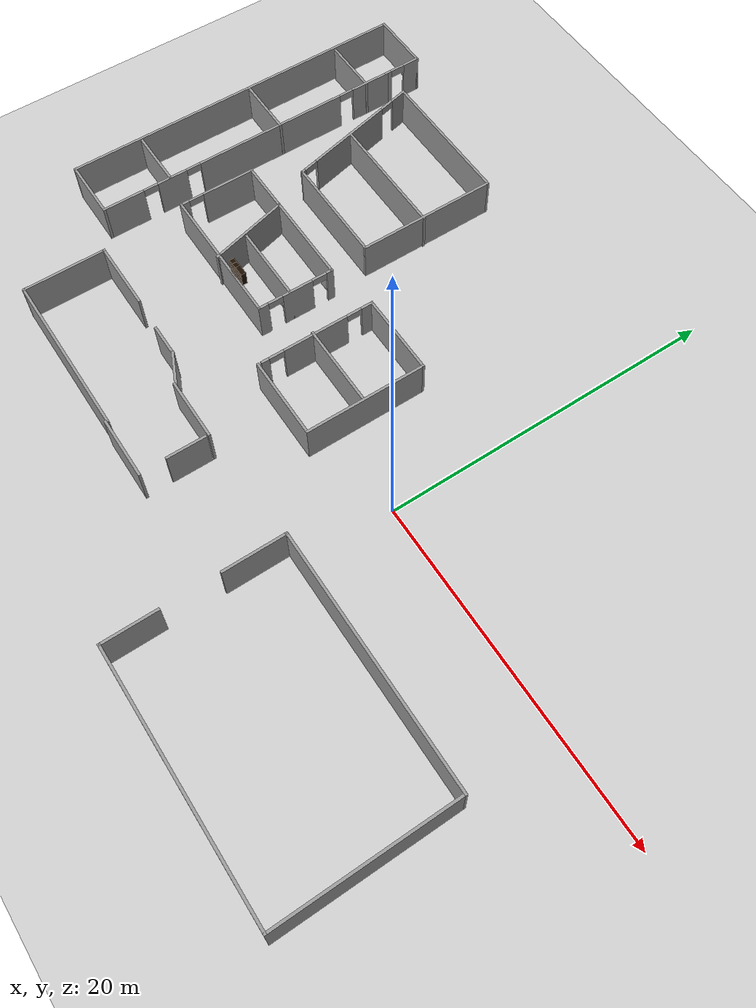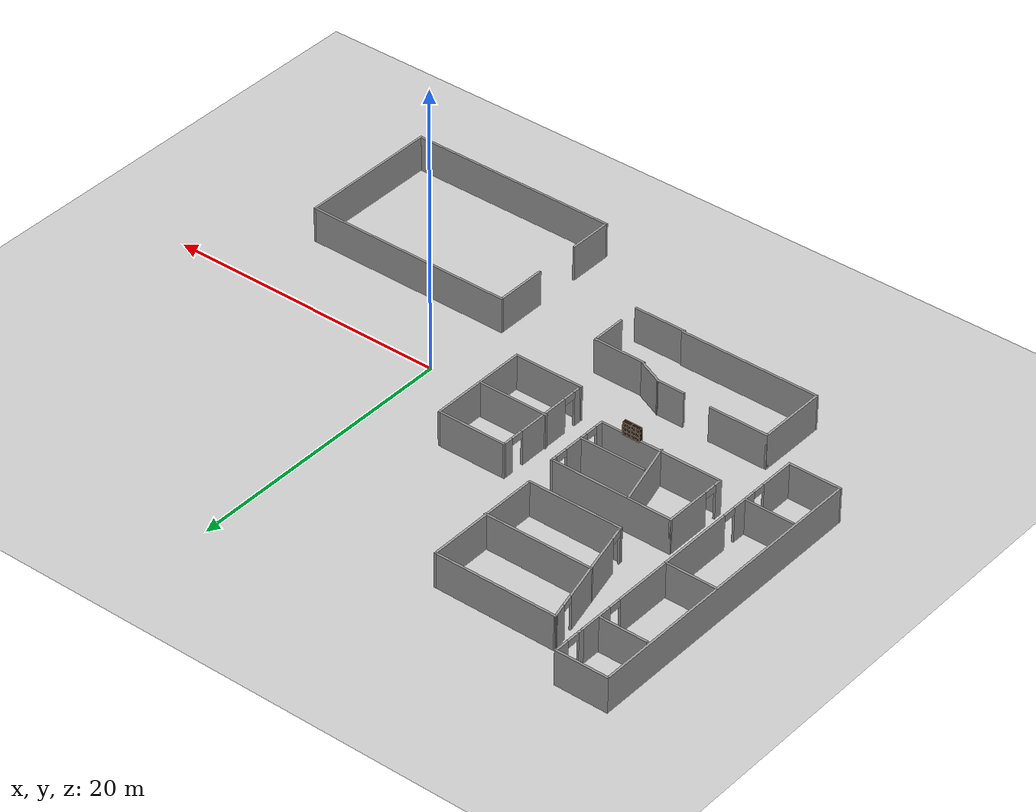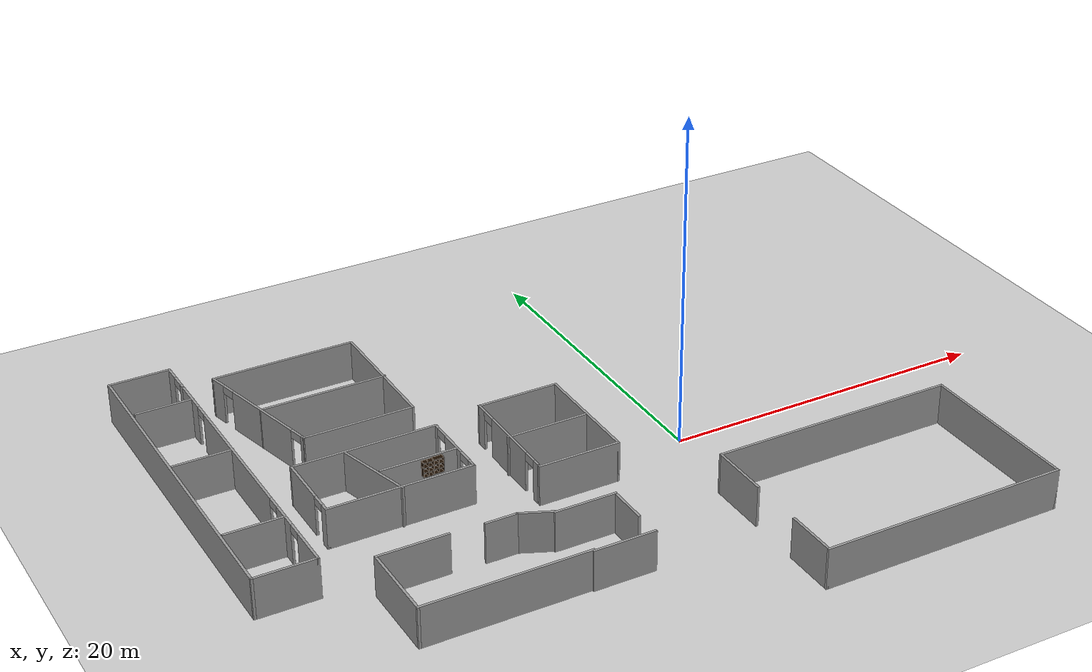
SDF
<sdf version="1.5">
 <world name="default">
  <model name="ground_plane">
   <static>1</static>
   <link name="link">
    <collision name="collision">
     <geometry><plane><normal>0 0 1</normal><size>100 100</size></plane></geometry>
     <surface>
      <contact><collide_bitmask>65535</collide_bitmask></contact>
      <friction><ode><mu>100</mu><mu2>50</mu2></ode></friction>
     </surface>
    </collision>
    <visual name="visual">
     <cast_shadows>0</cast_shadows>
     <geometry><plane><normal>0 0 1</normal><size>100 100</size></plane></geometry>
     <material>
      <script><uri>file://media/materials/scripts/gazebo.material</uri><name>Gazebo/Grey</name></script>
     </material>
    </visual>
   </link>
  </model>
  <model name="first_floor_add">
   <pose>-6.66595 1.00331 0 0 -0 0</pose>
   <link name="Wall_13">
    <collision name="Wall_13_Collision">
     <geometry><box><size>2 0.15 2.5</size></box></geometry>
     <pose>0 0 1.25 0 -0 0</pose>
    </collision>
    <visual name="Wall_13_Visual">
     <pose>0 0 1.25 0 -0 0</pose>
     <geometry><box><size>2 0.15 2.5</size></box></geometry>
     <material>
      <script><uri>file://media/materials/scripts/gazebo.material</uri><name>Gazebo/Grey</name></script>
      <ambient>1 1 1 1</ambient>
     </material>
     <meta><layer>0</layer></meta>
    </visual>
    <pose>-7.36405 -6.11422 0 0 -0 0</pose>
   </link>
   <link name="Wall_15">
    <collision name="Wall_15_Collision">
     <geometry><box><size>2.08472 0.15 2.5</size></box></geometry>
     <pose>0 0 1.25 0 -0 0</pose>
    </collision>
    <visual name="Wall_15_Visual">
     <pose>0 0 1.25 0 -0 0</pose>
     <geometry><box><size>2.08472 0.15 2.5</size></box></geometry>
     <material>
      <script><uri>file://media/materials/scripts/gazebo.material</uri><name>Gazebo/Grey</name></script>
      <ambient>1 1 1 1</ambient>
     </material>
     <meta><layer>0</layer></meta>
    </visual>
    <pose>-5.55503 -6.50778 0 0 -0 -0.418849</pose>
   </link>
   <link name="Wall_16">
    <collision name="Wall_16_Collision">
     <geometry><box><size>3.75 0.15 2.5</size></box></geometry>
     <pose>0 0 1.25 0 -0 0</pose>
    </collision>
    <visual name="Wall_16_Visual">
     <pose>0 0 1.25 0 -0 0</pose>
     <geometry><box><size>3.75 0.15 2.5</size></box></geometry>
     <material>
      <script><uri>file://media/materials/scripts/gazebo.material</uri><name>Gazebo/Grey</name></script>
      <ambient>1 1 1 1</ambient>
     </material>
     <meta><layer>0</layer></meta>
    </visual>
    <pose>-2.87101 -6.9721 0 0 -0 0</pose>
   </link>
   <link name="Wall_20">
    <collision name="Wall_20_Collision">
     <geometry><box><size>3.75 0.15 2.5</size></box></geometry>
     <pose>0 1.2 1.25 0 -0 0</pose>
    </collision>
    <visual name="Wall_20_Visual">
     <pose>0 1.2 1.25 0 -0 0</pose>
     <geometry><box><size>3.75 0.15 2.5</size></box></geometry>
     <material>
      <script><uri>file://media/materials/scripts/gazebo.material</uri><name>Gazebo/Grey</name></script>
      <ambient>1 1 1 1</ambient>
     </material>
     <meta><layer>0</layer></meta>
    </visual>
    <pose>-2.8204 -9.76422 0 0 -0 3.14159</pose>
   </link>
   <link name="Wall_22">
    <collision name="Wall_22_Collision">
     <geometry><box><size>10 0.15 2.5</size></box></geometry>
     <pose>0 0 1.25 0 -0 0</pose>
    </collision>
    <visual name="Wall_22_Visual">
     <pose>0 0 1.25 0 -0 0</pose>
     <geometry><box><size>10 0.15 2.5</size></box></geometry>
     <material>
      <script><uri>file://media/materials/scripts/gazebo.material</uri><name>Gazebo/Grey</name></script>
      <ambient>1 1 1 1</ambient>
     </material>
     <meta><layer>0</layer></meta>
    </visual>
    <pose>-9.5454 -10.8642 0 0 -0 3.14159</pose>
   </link>
   <link name="Wall_23">
    <collision name="Wall_23_Collision">
     <geometry><box><size>5 0.15 2.5</size></box></geometry>
     <pose>0 0 1.25 0 -0 0</pose>
    </collision>
    <visual name="Wall_23_Visual">
     <pose>0 0 1.25 0 -0 0</pose>
     <geometry><box><size>5 0.15 2.5</size></box></geometry>
     <material>
      <script><uri>file://media/materials/scripts/gazebo.material</uri><name>Gazebo/Grey</name></script>
      <ambient>1 1 1 1</ambient>
     </material>
     <meta><layer>0</layer></meta>
    </visual>
    <pose>-14.4704 -8.43922 0 0 -0 1.5708</pose>
   </link>
   <link name="Wall_24">
    <collision name="Wall_24_Collision">
     <geometry><box><size>4.25 0.15 2.5</size></box></geometry>
     <pose>0 0 1.25 0 -0 0</pose>
    </collision>
    <visual name="Wall_24_Visual">
     <pose>0 0 1.25 0 -0 0</pose>
     <geometry><box><size>4.25 0.15 2.5</size></box></geometry>
     <material>
      <script><uri>file://media/materials/scripts/gazebo.material</uri><name>Gazebo/Grey</name></script>
      <ambient>1 1 1 1</ambient>
     </material>
     <meta><layer>0</layer></meta>
    </visual>
    <pose>-12.4204 -6.01422 0 0 -0 0</pose>
   </link>
   <link name="Wall_27">
    <collision name="Wall_27_Collision">
     <geometry><box><size>15 0.15 2.5</size></box></geometry>
     <pose>0 0 1.25 0 -0 0</pose>
    </collision>
    <visual name="Wall_27_Visual">
     <pose>0 0 1.25 0 -0 0</pose>
     <geometry><box><size>15 0.15 2.5</size></box></geometry>
     <material>
      <script><uri>file://media/materials/scripts/gazebo.material</uri><name>Gazebo/Grey</name></script>
      <ambient>1 1 1 1</ambient>
     </material>
     <meta><layer>0</layer></meta>
    </visual>
    <pose>13.2135 -16.6492 0 0 -0 0</pose>
   </link>
   <link name="Wall_28">
    <collision name="Wall_28_Collision">
     <geometry><box><size>10.25 0.15 2.5</size></box></geometry>
     <pose>0 0 1.25 0 -0 0</pose>
    </collision>
    <visual name="Wall_28_Visual">
     <pose>0 0 1.25 0 -0 0</pose>
     <geometry><box><size>10.25 0.15 2.5</size></box></geometry>
     <material>
      <script><uri>file://media/materials/scripts/gazebo.material</uri><name>Gazebo/Grey</name></script>
      <ambient>1 1 1 1</ambient>
     </material>
     <meta><layer>0</layer></meta>
    </visual>
    <pose>20.6385 -11.5992 0 0 -0 1.5708</pose>
   </link>
   <link name="Wall_29">
    <collision name="Wall_29_Collision">
     <geometry><box><size>15 0.15 2.5</size></box></geometry>
     <pose>0 0 1.25 0 -0 0</pose>
    </collision>
    <visual name="Wall_29_Visual">
     <pose>0 0 1.25 0 -0 0</pose>
     <geometry><box><size>15 0.15 2.5</size></box></geometry>
     <material>
      <script><uri>file://media/materials/scripts/gazebo.material</uri><name>Gazebo/Grey</name></script>
      <ambient>1 1 1 1</ambient>
     </material>
     <meta><layer>0</layer></meta>
    </visual>
    <pose>13.2135 -6.5492 0 0 -0 3.14159</pose>
   </link>
   <link name="Wall_31">
    <collision name="Wall_31_Collision">
     <geometry><box><size>3.25 0.15 2.5</size></box></geometry>
     <pose>0 0 1.25 0 -0 0</pose>
    </collision>
    <visual name="Wall_31_Visual">
     <pose>0 0 1.25 0 -0 0</pose>
     <geometry><box><size>3.25 0.15 2.5</size></box></geometry>
     <material>
      <script><uri>file://media/materials/scripts/gazebo.material</uri><name>Gazebo/Grey</name></script>
      <ambient>1 1 1 1</ambient>
     </material>
     <meta><layer>0</layer></meta>
    </visual>
    <pose>5.78854 -15.0992 0 0 -0 1.5708</pose>
   </link>
   <link name="Wall_33">
    <collision name="Wall_33_Collision">
     <geometry><box><size>3.75 0.15 2.5</size></box></geometry>
     <pose>0 0 1.25 0 -0 0</pose>
    </collision>
    <visual name="Wall_33_Visual">
     <pose>0 0 1.25 0 -0 0</pose>
     <geometry><box><size>3.75 0.15 2.5</size></box></geometry>
     <material>
      <script><uri>file://media/materials/scripts/gazebo.material</uri><name>Gazebo/Grey</name></script>
      <ambient>1 1 1 1</ambient>
     </material>
     <meta><layer>0</layer></meta>
    </visual>
    <pose>5.78854 -8.34919 0 0 -0 -1.5708</pose>
   </link>
   <link name="Wall_36">
    <collision name="Wall_36_Collision">
     <geometry><box><size>2.35 0.15 2.5</size></box></geometry>
     <pose>1 0 1.25 0 -0 0</pose>
    </collision>
    <visual name="Wall_36_Visual">
     <pose>1 0 1.25 0 -0 0</pose>
     <geometry><box><size>2.35 0.15 2.5</size></box></geometry>
     <material>
      <script><uri>file://media/materials/scripts/gazebo.material</uri><name>Gazebo/Grey</name></script>
      <ambient>1 1 1 1</ambient>
     </material>
     <meta><layer>0</layer></meta>
    </visual>
    <pose>-1.07101 -7.2721 0 0 -0 -1.5708</pose>
   </link>
   <link name="Wall_41">
    <collision name="Wall_41_Collision">
     <geometry><box><size>6.75 0.15 2.5</size></box></geometry>
     <pose>0 0 1.25 0 -0 0</pose>
    </collision>
    <visual name="Wall_41_Visual">
     <pose>0 0 1.25 0 -0 0</pose>
     <geometry><box><size>6.75 0.15 2.5</size></box></geometry>
     <material>
      <script><uri>file://media/materials/scripts/gazebo.material</uri><name>Gazebo/Grey</name></script>
      <ambient>1 1 1 1</ambient>
     </material>
     <meta><layer>0</layer></meta>
    </visual>
    <pose>-9.89713 6.06852 0 0 -0 0</pose>
   </link>
   <link name="Wall_42">
    <collision name="Wall_42_Collision">
     <geometry><box><size>8.5 0.15 2.5</size></box></geometry>
     <pose>0 0 1.25 0 -0 0</pose>
    </collision>
    <visual name="Wall_42_Visual">
     <pose>0 0 1.25 0 -0 0</pose>
     <geometry><box><size>8.5 0.15 2.5</size></box></geometry>
     <material>
      <script><uri>file://media/materials/scripts/gazebo.material</uri><name>Gazebo/Grey</name></script>
      <ambient>1 1 1 1</ambient>
     </material>
     <meta><layer>0</layer></meta>
    </visual>
    <pose>-6.59713 10.2435 0 0 -0 1.5708</pose>
   </link>
   <link name="Wall_43">
    <collision name="Wall_43_Collision">
     <geometry><box><size>8.75 0.15 2.5</size></box></geometry>
     <pose>0 0 1.25 0 -0 0</pose>
    </collision>
    <visual name="Wall_43_Visual">
     <pose>0 0 1.25 0 -0 0</pose>
     <geometry><box><size>8.75 0.15 2.5</size></box></geometry>
     <material>
      <script><uri>file://media/materials/scripts/gazebo.material</uri><name>Gazebo/Grey</name></script>
      <ambient>1 1 1 1</ambient>
     </material>
     <meta><layer>0</layer></meta>
    </visual>
    <pose>-10.8971 14.4185 0 0 -0 3.14159</pose>
   </link>
   <link name="Wall_44">
    <pose>-14.1971 10.2435 0 0 -0 -1.3357</pose>
    <visual name="Wall_44_Visual_0">
     <pose>-3.81233 0 1.25 0 -0 0</pose>
     <geometry><box><size>1.11152 0.15 2.5</size></box></geometry>
     <material>
      <script><uri>file://media/materials/scripts/gazebo.material</uri><name>Gazebo/Grey</name></script>
      <ambient>1 1 1 1</ambient>
     </material>
     <meta><layer>0</layer></meta>
    </visual>
    <collision name="Wall_44_Collision_0">
     <geometry><box><size>1.11152 0.15 2.5</size></box></geometry>
     <pose>-3.81233 0 1.25 0 -0 0</pose>
    </collision>
    <visual name="Wall_44_Visual_1">
     <pose>0.408277 0 1.25 0 -0 0</pose>
     <geometry><box><size>5.5297 0.15 2.5</size></box></geometry>
     <material>
      <script><uri>file://media/materials/scripts/gazebo.material</uri><name>Gazebo/Grey</name></script>
      <ambient>1 1 1 1</ambient>
     </material>
     <meta><layer>0</layer></meta>
    </visual>
    <collision name="Wall_44_Collision_1">
     <geometry><box><size>5.5297 0.15 2.5</size></box></geometry>
     <pose>0.408277 0 1.25 0 -0 0</pose>
    </collision>
    <visual name="Wall_44_Visual_2">
     <pose>4.22061 0 1.25 0 -0 0</pose>
     <geometry><box><size>0.294964 0.15 2.5</size></box></geometry>
     <material>
      <script><uri>file://media/materials/scripts/gazebo.material</uri><name>Gazebo/Grey</name></script>
      <ambient>1 1 1 1</ambient>
     </material>
     <meta><layer>0</layer></meta>
    </visual>
    <collision name="Wall_44_Collision_2">
     <geometry><box><size>0.294964 0.15 2.5</size></box></geometry>
     <pose>4.22061 0 1.25 0 -0 0</pose>
    </collision>
    <visual name="Wall_44_Visual_3">
     <pose>-2.80657 0 2.25 0 -0 0</pose>
     <geometry><box><size>0.9 0.15 0.5</size></box></geometry>
     <material>
      <script><uri>file://media/materials/scripts/gazebo.material</uri><name>Gazebo/Grey</name></script>
      <ambient>1 1 1 1</ambient>
     </material>
     <meta><layer>0</layer></meta>
    </visual>
    <collision name="Wall_44_Collision_3">
     <geometry><box><size>0.9 0.15 0.5</size></box></geometry>
     <pose>-2.80657 0 2.25 0 -0 0</pose>
    </collision>
    <visual name="Wall_44_Visual_4">
     <pose>3.62313 0 2.25 0 -0 0</pose>
     <geometry><box><size>0.9 0.15 0.5</size></box></geometry>
     <material>
      <script><uri>file://media/materials/scripts/gazebo.material</uri><name>Gazebo/Grey</name></script>
      <ambient>1 1 1 1</ambient>
     </material>
     <meta><layer>0</layer></meta>
    </visual>
    <collision name="Wall_44_Collision_4">
     <geometry><box><size>0.9 0.15 0.5</size></box></geometry>
     <pose>3.62313 0 2.25 0 -0 0</pose>
    </collision>
   </link>
   <link name="Wall_46">
    <collision name="Wall_46_Collision">
     <geometry><box><size>7.75 0.15 2.5</size></box></geometry>
     <pose>0 0 1.25 0 -0 0</pose>
    </collision>
    <visual name="Wall_46_Visual">
     <pose>0 0 1.25 0 -0 0</pose>
     <geometry><box><size>7.75 0.15 2.5</size></box></geometry>
     <material>
      <script><uri>file://media/materials/scripts/gazebo.material</uri><name>Gazebo/Grey</name></script>
      <ambient>1 1 1 1</ambient>
     </material>
     <meta><layer>0</layer></meta>
    </visual>
    <pose>-10.3303 9.94403 0 0 -0 0</pose>
   </link>
   <link name="Wall_49">
    <collision name="Wall_49_Collision">
     <geometry><box><size>8.75 0.15 2.5</size></box></geometry>
     <pose>0 0 1.25 0 -0 0</pose>
    </collision>
    <visual name="Wall_49_Visual">
     <pose>0 0 1.25 0 -0 0</pose>
     <geometry><box><size>8.75 0.15 2.5</size></box></geometry>
     <material>
      <script><uri>file://media/materials/scripts/gazebo.material</uri><name>Gazebo/Grey</name></script>
      <ambient>1 1 1 1</ambient>
     </material>
     <meta><layer>0</layer></meta>
    </visual>
    <pose>-10.6338 3.69442 0 0 -0 3.14159</pose>
   </link>
   <link name="Wall_50">
    <pose>-14.9338 1.39443 0 0 -0 -1.5708</pose>
    <visual name="Wall_50_Visual_0">
     <pose>-0.737121 0 1.25 0 -0 0</pose>
     <geometry><box><size>3.27576 0.15 2.5</size></box></geometry>
     <material>
      <script><uri>file://media/materials/scripts/gazebo.material</uri><name>Gazebo/Grey</name></script>
      <ambient>1 1 1 1</ambient>
     </material>
     <meta><layer>0</layer></meta>
    </visual>
    <collision name="Wall_50_Collision_0">
     <geometry><box><size>3.27576 0.15 2.5</size></box></geometry>
     <pose>-0.737121 0 1.25 0 -0 0</pose>
    </collision>
    <visual name="Wall_50_Visual_1">
     <pose>2.08788 0 1.25 0 -0 0</pose>
     <geometry><box><size>0.574241 0.15 2.5</size></box></geometry>
     <material>
      <script><uri>file://media/materials/scripts/gazebo.material</uri><name>Gazebo/Grey</name></script>
      <ambient>1 1 1 1</ambient>
     </material>
     <meta><layer>0</layer></meta>
    </visual>
    <collision name="Wall_50_Collision_1">
     <geometry><box><size>0.574241 0.15 2.5</size></box></geometry>
     <pose>2.08788 0 1.25 0 -0 0</pose>
    </collision>
    <visual name="Wall_50_Visual_2">
     <pose>1.35076 0 2.25 0 -0 0</pose>
     <geometry><box><size>0.9 0.15 0.5</size></box></geometry>
     <material>
      <script><uri>file://media/materials/scripts/gazebo.material</uri><name>Gazebo/Grey</name></script>
      <ambient>1 1 1 1</ambient>
     </material>
     <meta><layer>0</layer></meta>
    </visual>
    <collision name="Wall_50_Collision_2">
     <geometry><box><size>0.9 0.15 0.5</size></box></geometry>
     <pose>1.35076 0 2.25 0 -0 0</pose>
    </collision>
   </link>
   <link name="Wall_51">
    <collision name="Wall_51_Collision">
     <geometry><box><size>8.75 0.15 2.5</size></box></geometry>
     <pose>0 0 1.25 0 -0 0</pose>
    </collision>
    <visual name="Wall_51_Visual">
     <pose>0 0 1.25 0 -0 0</pose>
     <geometry><box><size>8.75 0.15 2.5</size></box></geometry>
     <material>
      <script><uri>file://media/materials/scripts/gazebo.material</uri><name>Gazebo/Grey</name></script>
      <ambient>1 1 1 1</ambient>
     </material>
     <meta><layer>0</layer></meta>
    </visual>
    <pose>-10.6338 -0.905575 0 0 -0 0</pose>
   </link>
   <link name="Wall_52">
    <pose>-6.33377 1.39443 0 0 -0 1.5708</pose>
    <visual name="Wall_52_Visual_0">
     <pose>-2.05694 0 1.25 0 -0 0</pose>
     <geometry><box><size>0.636118 0.15 2.5</size></box></geometry>
     <material>
      <script><uri>file://media/materials/scripts/gazebo.material</uri><name>Gazebo/Grey</name></script>
      <ambient>1 1 1 1</ambient>
     </material>
     <meta><layer>0</layer></meta>
    </visual>
    <collision name="Wall_52_Collision_0">
     <geometry><box><size>0.636118 0.15 2.5</size></box></geometry>
     <pose>-2.05694 0 1.25 0 -0 0</pose>
    </collision>
    <visual name="Wall_52_Visual_1">
     <pose>0.103357 0 1.25 0 -0 0</pose>
     <geometry><box><size>1.88448 0.15 2.5</size></box></geometry>
     <material>
      <script><uri>file://media/materials/scripts/gazebo.material</uri><name>Gazebo/Grey</name></script>
      <ambient>1 1 1 1</ambient>
     </material>
     <meta><layer>0</layer></meta>
    </visual>
    <collision name="Wall_52_Collision_1">
     <geometry><box><size>1.88448 0.15 2.5</size></box></geometry>
     <pose>0.103357 0 1.25 0 -0 0</pose>
    </collision>
    <visual name="Wall_52_Visual_2">
     <pose>2.1603 0 1.25 0 -0 0</pose>
     <geometry><box><size>0.429405 0.15 2.5</size></box></geometry>
     <material>
      <script><uri>file://media/materials/scripts/gazebo.material</uri><name>Gazebo/Grey</name></script>
      <ambient>1 1 1 1</ambient>
     </material>
     <meta><layer>0</layer></meta>
    </visual>
    <collision name="Wall_52_Collision_2">
     <geometry><box><size>0.429405 0.15 2.5</size></box></geometry>
     <pose>2.1603 0 1.25 0 -0 0</pose>
    </collision>
    <visual name="Wall_52_Visual_3">
     <pose>-1.28888 0 2.25 0 -0 0</pose>
     <geometry><box><size>0.9 0.15 0.5</size></box></geometry>
     <material>
      <script><uri>file://media/materials/scripts/gazebo.material</uri><name>Gazebo/Grey</name></script>
      <ambient>1 1 1 1</ambient>
     </material>
     <meta><layer>0</layer></meta>
    </visual>
    <collision name="Wall_52_Collision_3">
     <geometry><box><size>0.9 0.15 0.5</size></box></geometry>
     <pose>-1.28888 0 2.25 0 -0 0</pose>
    </collision>
    <visual name="Wall_52_Visual_4">
     <pose>1.4956 0 2.25 0 -0 0</pose>
     <geometry><box><size>0.9 0.15 0.5</size></box></geometry>
     <material>
      <script><uri>file://media/materials/scripts/gazebo.material</uri><name>Gazebo/Grey</name></script>
      <ambient>1 1 1 1</ambient>
     </material>
     <meta><layer>0</layer></meta>
    </visual>
    <collision name="Wall_52_Collision_4">
     <geometry><box><size>0.9 0.15 0.5</size></box></geometry>
     <pose>1.4956 0 2.25 0 -0 0</pose>
    </collision>
   </link>
   <link name="Wall_54">
    <collision name="Wall_54_Collision">
     <geometry><box><size>5 0.15 2.5</size></box></geometry>
     <pose>0 0 1.25 0 -0 0</pose>
    </collision>
    <visual name="Wall_54_Visual">
     <pose>0 0 1.25 0 -0 0</pose>
     <geometry><box><size>5 0.15 2.5</size></box></geometry>
     <material>
      <script><uri>file://media/materials/scripts/gazebo.material</uri><name>Gazebo/Grey</name></script>
      <ambient>1 1 1 1</ambient>
     </material>
     <meta><layer>0</layer></meta>
    </visual>
    <pose>-11.2309 1.33412 0 0 -0 1.8326</pose>
   </link>
   <link name="Wall_56">
    <collision name="Wall_56_Collision">
     <geometry><box><size>4.75 0.15 2.5</size></box></geometry>
     <pose>0 0 1.25 0 -0 0</pose>
    </collision>
    <visual name="Wall_56_Visual">
     <pose>0 0 1.25 0 -0 0</pose>
     <geometry><box><size>4.75 0.15 2.5</size></box></geometry>
     <material>
      <script><uri>file://media/materials/scripts/gazebo.material</uri><name>Gazebo/Grey</name></script>
      <ambient>1 1 1 1</ambient>
     </material>
     <meta><layer>0</layer></meta>
    </visual>
    <pose>-8.63377 1.0337 0 0 -0 3.14159</pose>
   </link>
   <link name="Wall_62">
    <pose>-17.0385 4.84919 0 0 -0 -1.5708</pose>
    <visual name="Wall_62_Visual_0">
     <pose>-8.36199 0 1.25 0 -0 0</pose>
     <geometry><box><size>2.52602 0.15 2.5</size></box></geometry>
     <material>
      <script><uri>file://media/materials/scripts/gazebo.material</uri><name>Gazebo/Grey</name></script>
      <ambient>1 1 1 1</ambient>
     </material>
     <meta><layer>0</layer></meta>
    </visual>
    <collision name="Wall_62_Collision_0">
     <geometry><box><size>2.52602 0.15 2.5</size></box></geometry>
     <pose>-8.36199 0 1.25 0 -0 0</pose>
    </collision>
    <visual name="Wall_62_Visual_1">
     <pose>-1.41881 0 1.25 0 -0 0</pose>
     <geometry><box><size>9.56035 0.15 2.5</size></box></geometry>
     <material>
      <script><uri>file://media/materials/scripts/gazebo.material</uri><name>Gazebo/Grey</name></script>
      <ambient>1 1 1 1</ambient>
     </material>
     <meta><layer>0</layer></meta>
    </visual>
    <collision name="Wall_62_Collision_1">
     <geometry><box><size>9.56035 0.15 2.5</size></box></geometry>
     <pose>-1.41881 0 1.25 0 -0 0</pose>
    </collision>
    <visual name="Wall_62_Visual_2">
     <pose>5.19897 0 1.25 0 -0 0</pose>
     <geometry><box><size>1.87519 0.15 2.5</size></box></geometry>
     <material>
      <script><uri>file://media/materials/scripts/gazebo.material</uri><name>Gazebo/Grey</name></script>
      <ambient>1 1 1 1</ambient>
     </material>
     <meta><layer>0</layer></meta>
    </visual>
    <collision name="Wall_62_Collision_2">
     <geometry><box><size>1.87519 0.15 2.5</size></box></geometry>
     <pose>5.19897 0 1.25 0 -0 0</pose>
    </collision>
    <visual name="Wall_62_Visual_3">
     <pose>8.33078 0 1.25 0 -0 0</pose>
     <geometry><box><size>2.58844 0.15 2.5</size></box></geometry>
     <material>
      <script><uri>file://media/materials/scripts/gazebo.material</uri><name>Gazebo/Grey</name></script>
      <ambient>1 1 1 1</ambient>
     </material>
     <meta><layer>0</layer></meta>
    </visual>
    <collision name="Wall_62_Collision_3">
     <geometry><box><size>2.58844 0.15 2.5</size></box></geometry>
     <pose>8.33078 0 1.25 0 -0 0</pose>
    </collision>
    <visual name="Wall_62_Visual_4">
     <pose>-6.64898 0 2.25 0 -0 0</pose>
     <geometry><box><size>0.9 0.15 0.5</size></box></geometry>
     <material>
      <script><uri>file://media/materials/scripts/gazebo.material</uri><name>Gazebo/Grey</name></script>
      <ambient>1 1 1 1</ambient>
     </material>
     <meta><layer>0</layer></meta>
    </visual>
    <collision name="Wall_62_Collision_4">
     <geometry><box><size>0.9 0.15 0.5</size></box></geometry>
     <pose>-6.64898 0 2.25 0 -0 0</pose>
    </collision>
    <visual name="Wall_62_Visual_5">
     <pose>3.81137 0 2.25 0 -0 0</pose>
     <geometry><box><size>0.9 0.15 0.5</size></box></geometry>
     <material>
      <script><uri>file://media/materials/scripts/gazebo.material</uri><name>Gazebo/Grey</name></script>
      <ambient>1 1 1 1</ambient>
     </material>
     <meta><layer>0</layer></meta>
    </visual>
    <collision name="Wall_62_Collision_5">
     <geometry><box><size>0.9 0.15 0.5</size></box></geometry>
     <pose>3.81137 0 2.25 0 -0 0</pose>
    </collision>
    <visual name="Wall_62_Visual_6">
     <pose>6.58656 0 2.25 0 -0 0</pose>
     <geometry><box><size>0.9 0.15 0.5</size></box></geometry>
     <material>
      <script><uri>file://media/materials/scripts/gazebo.material</uri><name>Gazebo/Grey</name></script>
      <ambient>1 1 1 1</ambient>
     </material>
     <meta><layer>0</layer></meta>
    </visual>
    <collision name="Wall_62_Collision_6">
     <geometry><box><size>0.9 0.15 0.5</size></box></geometry>
     <pose>6.58656 0 2.25 0 -0 0</pose>
    </collision>
   </link>
   <link name="Wall_63">
    <collision name="Wall_63_Collision">
     <geometry><box><size>3.75 0.15 2.5</size></box></geometry>
     <pose>0 0 1.25 0 -0 0</pose>
    </collision>
    <visual name="Wall_63_Visual">
     <pose>0 0 1.25 0 -0 0</pose>
     <geometry><box><size>3.75 0.15 2.5</size></box></geometry>
     <material>
      <script><uri>file://media/materials/scripts/gazebo.material</uri><name>Gazebo/Grey</name></script>
      <ambient>1 1 1 1</ambient>
     </material>
     <meta><layer>0</layer></meta>
    </visual>
    <pose>-18.8385 -4.70081 0 0 -0 3.14159</pose>
   </link>
   <link name="Wall_65">
    <collision name="Wall_65_Collision">
     <geometry><box><size>21.5 0.15 2.5</size></box></geometry>
     <pose>0 0 1.25 0 -0 0</pose>
    </collision>
    <visual name="Wall_65_Visual">
     <pose>0 0 1.25 0 -0 0</pose>
     <geometry><box><size>21.5 0.15 2.5</size></box></geometry>
     <material>
      <script><uri>file://media/materials/scripts/gazebo.material</uri><name>Gazebo/Grey</name></script>
      <ambient>1 1 1 1</ambient>
     </material>
     <meta><layer>0</layer></meta>
    </visual>
    <pose>-20.6385 5.97419 0 0 -0 1.5708</pose>
   </link>
   <link name="Wall_66">
    <collision name="Wall_66_Collision">
     <geometry><box><size>3.75 0.15 2.5</size></box></geometry>
     <pose>0 0 1.25 0 -0 0</pose>
    </collision>
    <visual name="Wall_66_Visual">
     <pose>0 0 1.25 0 -0 0</pose>
     <geometry><box><size>3.75 0.15 2.5</size></box></geometry>
     <material>
      <script><uri>file://media/materials/scripts/gazebo.material</uri><name>Gazebo/Grey</name></script>
      <ambient>1 1 1 1</ambient>
     </material>
     <meta><layer>0</layer></meta>
    </visual>
    <pose>-18.8385 16.6492 0 0 -0 0</pose>
   </link>
   <link name="Wall_67">
    <pose>-17.0385 15.5242 0 0 -0 -1.5708</pose>
    <visual name="Wall_67_Visual_0">
     <pose>-0.662123 0 1.25 0 -0 0</pose>
     <geometry><box><size>1.07575 0.15 2.5</size></box></geometry>
     <material>
      <script><uri>file://media/materials/scripts/gazebo.material</uri><name>Gazebo/Grey</name></script>
      <ambient>1 1 1 1</ambient>
     </material>
     <meta><layer>0</layer></meta>
    </visual>
    <collision name="Wall_67_Collision_0">
     <geometry><box><size>1.07575 0.15 2.5</size></box></geometry>
     <pose>-0.662123 0 1.25 0 -0 0</pose>
    </collision>
    <visual name="Wall_67_Visual_1">
     <pose>0.987877 0 1.25 0 -0 0</pose>
     <geometry><box><size>0.424246 0.15 2.5</size></box></geometry>
     <material>
      <script><uri>file://media/materials/scripts/gazebo.material</uri><name>Gazebo/Grey</name></script>
      <ambient>1 1 1 1</ambient>
     </material>
     <meta><layer>0</layer></meta>
    </visual>
    <collision name="Wall_67_Collision_1">
     <geometry><box><size>0.424246 0.15 2.5</size></box></geometry>
     <pose>0.987877 0 1.25 0 -0 0</pose>
    </collision>
    <visual name="Wall_67_Visual_2">
     <pose>0.325754 0 2.25 0 -0 0</pose>
     <geometry><box><size>0.9 0.15 0.5</size></box></geometry>
     <material>
      <script><uri>file://media/materials/scripts/gazebo.material</uri><name>Gazebo/Grey</name></script>
      <ambient>1 1 1 1</ambient>
     </material>
     <meta><layer>0</layer></meta>
    </visual>
    <collision name="Wall_67_Collision_2">
     <geometry><box><size>0.9 0.15 0.5</size></box></geometry>
     <pose>0.325754 0 2.25 0 -0 0</pose>
    </collision>
   </link>
   <link name="Wall_69">
    <collision name="Wall_69_Collision">
     <geometry><box><size>3.5 0.15 2.5</size></box></geometry>
     <pose>0 0 1.25 0 -0 0</pose>
    </collision>
    <visual name="Wall_69_Visual">
     <pose>0 0 1.25 0 -0 0</pose>
     <geometry><box><size>3.5 0.15 2.5</size></box></geometry>
     <material>
      <script><uri>file://media/materials/scripts/gazebo.material</uri><name>Gazebo/Grey</name></script>
      <ambient>1 1 1 1</ambient>
     </material>
     <meta><layer>0</layer></meta>
    </visual>
    <pose>-18.769 -0.456512 0 0 -0 3.14159</pose>
   </link>
   <link name="Wall_72">
    <collision name="Wall_72_Collision">
     <geometry><box><size>3.75 0.15 2.5</size></box></geometry>
     <pose>0 0 1.25 0 -0 0</pose>
    </collision>
    <visual name="Wall_72_Visual">
     <pose>0 0 1.25 0 -0 0</pose>
     <geometry><box><size>3.75 0.15 2.5</size></box></geometry>
     <material>
      <script><uri>file://media/materials/scripts/gazebo.material</uri><name>Gazebo/Grey</name></script>
      <ambient>1 1 1 1</ambient>
     </material>
     <meta><layer>0</layer></meta>
    </visual>
    <pose>-18.8228 6.87285 0 0 -0 3.14159</pose>
   </link>
   <link name="Wall_74">
    <collision name="Wall_74_Collision">
     <geometry><box><size>3.5 0.15 2.5</size></box></geometry>
     <pose>0 0 1.25 0 -0 0</pose>
    </collision>
    <visual name="Wall_74_Visual">
     <pose>0 0 1.25 0 -0 0</pose>
     <geometry><box><size>3.5 0.15 2.5</size></box></geometry>
     <material>
      <script><uri>file://media/materials/scripts/gazebo.material</uri><name>Gazebo/Grey</name></script>
      <ambient>1 1 1 1</ambient>
     </material>
     <meta><layer>0</layer></meta>
    </visual>
    <pose>-18.6978 12.9214 0 0 -0 3.14159</pose>
   </link>
   <link name="Wall_78">
    <collision name="Wall_78_Collision">
     <geometry><box><size>5 0.15 2.5</size></box></geometry>
     <pose>0 0 1.25 0 -0 0</pose>
    </collision>
    <visual name="Wall_78_Visual">
     <pose>0 0 1.25 0 -0 0</pose>
     <geometry><box><size>5 0.15 2.5</size></box></geometry>
     <material>
      <script><uri>file://media/materials/scripts/gazebo.material</uri><name>Gazebo/Grey</name></script>
      <ambient>1 1 1 1</ambient>
     </material>
     <meta><layer>0</layer></meta>
    </visual>
    <pose>-0.870148 -2.77032 0 0 -0 0</pose>
   </link>
   <link name="Wall_79">
    <collision name="Wall_79_Collision">
     <geometry><box><size>7.25 0.15 2.5</size></box></geometry>
     <pose>0 0 1.25 0 -0 0</pose>
    </collision>
    <visual name="Wall_79_Visual">
     <pose>0 0 1.25 0 -0 0</pose>
     <geometry><box><size>7.25 0.15 2.5</size></box></geometry>
     <material>
      <script><uri>file://media/materials/scripts/gazebo.material</uri><name>Gazebo/Grey</name></script>
      <ambient>1 1 1 1</ambient>
     </material>
     <meta><layer>0</layer></meta>
    </visual>
    <pose>1.55485 0.779682 0 0 -0 1.5708</pose>
   </link>
   <link name="Wall_80">
    <collision name="Wall_80_Collision">
     <geometry><box><size>5 0.15 2.5</size></box></geometry>
     <pose>0 0 1.25 0 -0 0</pose>
    </collision>
    <visual name="Wall_80_Visual">
     <pose>0 0 1.25 0 -0 0</pose>
     <geometry><box><size>5 0.15 2.5</size></box></geometry>
     <material>
      <script><uri>file://media/materials/scripts/gazebo.material</uri><name>Gazebo/Grey</name></script>
      <ambient>1 1 1 1</ambient>
     </material>
     <meta><layer>0</layer></meta>
    </visual>
    <pose>-0.870148 4.32968 0 0 -0 3.14159</pose>
   </link>
   <link name="Wall_81">
    <pose>-3.29515 0.904682 0 0 -0 -1.5708</pose>
    <visual name="Wall_81_Visual_0">
     <pose>-3.11211 0 1.25 0 -0 0</pose>
     <geometry><box><size>0.775779 0.15 2.5</size></box></geometry>
     <material>
      <script><uri>file://media/materials/scripts/gazebo.material</uri><name>Gazebo/Grey</name></script>
      <ambient>1 1 1 1</ambient>
     </material>
     <meta><layer>0</layer></meta>
    </visual>
    <collision name="Wall_81_Collision_0">
     <geometry><box><size>0.775779 0.15 2.5</size></box></geometry>
     <pose>-3.11211 0 1.25 0 -0 0</pose>
    </collision>
    <visual name="Wall_81_Visual_1">
     <pose>0.147064 0 1.25 0 -0 0</pose>
     <geometry><box><size>3.94257 0.15 2.5</size></box></geometry>
     <material>
      <script><uri>file://media/materials/scripts/gazebo.material</uri><name>Gazebo/Grey</name></script>
      <ambient>1 1 1 1</ambient>
     </material>
     <meta><layer>0</layer></meta>
    </visual>
    <collision name="Wall_81_Collision_1">
     <geometry><box><size>3.94257 0.15 2.5</size></box></geometry>
     <pose>0.147064 0 1.25 0 -0 0</pose>
    </collision>
    <visual name="Wall_81_Visual_2">
     <pose>3.25917 0 1.25 0 -0 0</pose>
     <geometry><box><size>0.481652 0.15 2.5</size></box></geometry>
     <material>
      <script><uri>file://media/materials/scripts/gazebo.material</uri><name>Gazebo/Grey</name></script>
      <ambient>1 1 1 1</ambient>
     </material>
     <meta><layer>0</layer></meta>
    </visual>
    <collision name="Wall_81_Collision_2">
     <geometry><box><size>0.481652 0.15 2.5</size></box></geometry>
     <pose>3.25917 0 1.25 0 -0 0</pose>
    </collision>
    <visual name="Wall_81_Visual_3">
     <pose>-2.27422 0 2.25 0 -0 0</pose>
     <geometry><box><size>0.9 0.15 0.5</size></box></geometry>
     <material>
      <script><uri>file://media/materials/scripts/gazebo.material</uri><name>Gazebo/Grey</name></script>
      <ambient>1 1 1 1</ambient>
     </material>
     <meta><layer>0</layer></meta>
    </visual>
    <collision name="Wall_81_Collision_3">
     <geometry><box><size>0.9 0.15 0.5</size></box></geometry>
     <pose>-2.27422 0 2.25 0 -0 0</pose>
    </collision>
    <visual name="Wall_81_Visual_4">
     <pose>2.56835 0 2.25 0 -0 0</pose>
     <geometry><box><size>0.9 0.15 0.5</size></box></geometry>
     <material>
      <script><uri>file://media/materials/scripts/gazebo.material</uri><name>Gazebo/Grey</name></script>
      <ambient>1 1 1 1</ambient>
     </material>
     <meta><layer>0</layer></meta>
    </visual>
    <collision name="Wall_81_Collision_4">
     <geometry><box><size>0.9 0.15 0.5</size></box></geometry>
     <pose>2.56835 0 2.25 0 -0 0</pose>
    </collision>
   </link>
   <link name="Wall_83">
    <collision name="Wall_83_Collision">
     <geometry><box><size>5 0.15 2.5</size></box></geometry>
     <pose>0 0 1.25 0 -0 0</pose>
    </collision>
    <visual name="Wall_83_Visual">
     <pose>0 0 1.25 0 -0 0</pose>
     <geometry><box><size>5 0.15 2.5</size></box></geometry>
     <material>
      <script><uri>file://media/materials/scripts/gazebo.material</uri><name>Gazebo/Grey</name></script>
      <ambient>1 1 1 1</ambient>
     </material>
     <meta><layer>0</layer></meta>
    </visual>
    <pose>-0.964722 0.650006 0 0 -0 0</pose>
   </link>
   <static>1</static>
  </model>
  <model name="6_Cube_StorageE">
   <link name="Wall_0">
    <pose>0 0 0.01 0 -0 0</pose>
    <inertial>
     <mass>1.6201</mass>
     <inertia><ixx>0.0119</ixx><iyy>0.0631</iyy><izz>0.0513</izz><ixy>0</ixy><ixz>0</ixz><iyz>0</iyz></inertia>
    </inertial>
    <collision name="Wall_0_Collision"><geometry><box><size>0.616 0.296 0.02</size></box></geometry></collision>
    <visual name="Wall_0_Visual">
     <meta><layer>3</layer></meta>
     <geometry><box><size>0.616 0.296 0.02</size></box></geometry>
     <material>
      <script><uri>file://media/materials/scripts/gazebo.material</uri><name>Gazebo/Grey</name></script>
      <ambient>0.105882 0.0509804 0 1</ambient>
     </material>
    </visual>
   </link>
   <joint name="0_2" type="fixed">
    <pose>-0.308 0 0 0 -0 0</pose>
    <parent>Wall_2</parent>
    <child>Wall_0</child>
    <axis>
     <xyz>1 0 0</xyz>
     <use_parent_model_frame>0</use_parent_model_frame>
     <limit><lower>-1e+16</lower><upper>1e+16</upper></limit>
    </axis>
   </joint>
   <joint name="0_12" type="fixed">
    <parent>Wall_12</parent>
    <child>Wall_0</child>
    <axis>
     <xyz>0 0 1</xyz>
     <use_parent_model_frame>0</use_parent_model_frame>
     <limit><lower>-1e+16</lower><upper>1e+16</upper></limit>
    </axis>
   </joint>
   <joint name="0_4" type="fixed">
    <pose>0.308 0 0 0 -0 0</pose>
    <parent>Wall_4</parent>
    <child>Wall_0</child>
    <axis>
     <xyz>1 0 0</xyz>
     <use_parent_model_frame>0</use_parent_model_frame>
     <limit><lower>-1e+16</lower><upper>1e+16</upper></limit>
    </axis>
   </joint>
   <link name="Wall_10">
    <pose>0 0 0.61 0 -0 0</pose>
    <inertial>
     <mass>1.6201</mass>
     <inertia><ixx>0.0119</ixx><iyy>0.0631</iyy><izz>0.0513</izz><ixy>0</ixy><ixz>0</ixz><iyz>0</iyz></inertia>
    </inertial>
    <collision name="Wall_10_Collision"><geometry><box><size>0.616 0.296 0.02</size></box></geometry></collision>
    <visual name="Wall_10_Visual">
     <meta><layer>3</layer></meta>
     <geometry><box><size>0.616 0.296 0.02</size></box></geometry>
     <material>
      <script><uri>file://media/materials/scripts/gazebo.material</uri><name>Gazebo/Grey</name></script>
      <ambient>0.105882 0.0509804 0 1</ambient>
     </material>
    </visual>
   </link>
   <joint name="10_2" type="fixed">
    <pose>-0.308 0 0 0 -0 0</pose>
    <parent>Wall_2</parent>
    <child>Wall_10</child>
    <axis>
     <xyz>1 0 0</xyz>
     <use_parent_model_frame>0</use_parent_model_frame>
     <limit><lower>-1e+16</lower><upper>1e+16</upper></limit>
    </axis>
   </joint>
   <joint name="10_12" type="fixed">
    <parent>Wall_12</parent>
    <child>Wall_10</child>
    <axis>
     <xyz>0 0 1</xyz>
     <use_parent_model_frame>0</use_parent_model_frame>
     <limit><lower>-1e+16</lower><upper>1e+16</upper></limit>
    </axis>
   </joint>
   <joint name="10_4" type="fixed">
    <pose>0.308 0 0 0 -0 0</pose>
    <parent>Wall_4</parent>
    <child>Wall_10</child>
    <axis>
     <xyz>1 0 0</xyz>
     <use_parent_model_frame>0</use_parent_model_frame>
     <limit><lower>-1e+16</lower><upper>1e+16</upper></limit>
    </axis>
   </joint>
   <link name="Wall_12">
    <pose>0 0 0.4575 0 -0 0</pose>
    <inertial>
     <mass>2.4065</mass>
     <inertia><ixx>0.0177</ixx><iyy>0.1855</iyy><izz>0.168</izz><ixy>0</ixy><ixz>0</ixz><iyz>0</iyz></inertia>
    </inertial>
    <collision name="Wall_12_Collision"><geometry><box><size>0.02 0.296 0.915</size></box></geometry></collision>
    <visual name="Wall_12_Visual">
     <meta><layer>3</layer></meta>
     <geometry><box><size>0.02 0.296 0.915</size></box></geometry>
     <material>
      <script><uri>file://media/materials/scripts/gazebo.material</uri><name>Gazebo/Grey</name></script>
      <ambient>0.105882 0.0509804 0 1</ambient>
     </material>
    </visual>
   </link>
   <link name="Wall_2">
    <pose>-0.298 0 0.4575 0 -0 0</pose>
    <inertial>
     <mass>2.4065</mass>
     <inertia><ixx>0.0177</ixx><iyy>0.1855</iyy><izz>0.168</izz><ixy>0</ixy><ixz>0</ixz><iyz>0</iyz></inertia>
    </inertial>
    <collision name="Wall_2_Collision"><geometry><box><size>0.02 0.296 0.915</size></box></geometry></collision>
    <visual name="Wall_2_Visual">
     <meta><layer>3</layer></meta>
     <geometry><box><size>0.02 0.296 0.915</size></box></geometry>
     <material>
      <script><uri>file://media/materials/scripts/gazebo.material</uri><name>Gazebo/Grey</name></script>
      <ambient>0.105882 0.0509804 0 1</ambient>
     </material>
    </visual>
   </link>
   <link name="Wall_4">
    <pose>0.298 0 0.4575 0 -0 0</pose>
    <inertial>
     <mass>2.4065</mass>
     <inertia><ixx>0.0177</ixx><iyy>0.1855</iyy><izz>0.168</izz><ixy>0</ixy><ixz>0</ixz><iyz>0</iyz></inertia>
    </inertial>
    <collision name="Wall_4_Collision"><geometry><box><size>0.02 0.296 0.915</size></box></geometry></collision>
    <visual name="Wall_4_Visual">
     <meta><layer>3</layer></meta>
     <geometry><box><size>0.02 0.296 0.915</size></box></geometry>
     <material>
      <script><uri>file://media/materials/scripts/gazebo.material</uri><name>Gazebo/Grey</name></script>
      <ambient>0.105882 0.0509804 0 1</ambient>
     </material>
    </visual>
   </link>
   <link name="Wall_6">
    <pose>0 0 0.905 0 -0 0</pose>
    <inertial>
     <mass>1.6201</mass>
     <inertia><ixx>0.0119</ixx><iyy>0.0631</iyy><izz>0.0513</izz><ixy>0</ixy><ixz>0</ixz><iyz>0</iyz></inertia>
    </inertial>
    <collision name="Wall_6_Collision"><geometry><box><size>0.616 0.296 0.02</size></box></geometry></collision>
    <visual name="Wall_6_Visual">
     <meta><layer>3</layer></meta>
     <geometry><box><size>0.616 0.296 0.02</size></box></geometry>
     <material>
      <script><uri>file://media/materials/scripts/gazebo.material</uri><name>Gazebo/Grey</name></script>
      <ambient>0.105882 0.0509804 0 1</ambient>
     </material>
    </visual>
   </link>
   <joint name="6_2" type="fixed">
    <pose>-0.308 0 0 0 -0 0</pose>
    <parent>Wall_2</parent>
    <child>Wall_6</child>
    <axis>
     <xyz>2 0 0</xyz>
     <use_parent_model_frame>0</use_parent_model_frame>
     <limit><lower>-1e+16</lower><upper>1e+16</upper></limit>
    </axis>
   </joint>
   <joint name="6_12" type="fixed">
    <parent>Wall_12</parent>
    <child>Wall_6</child>
    <axis>
     <xyz>0 0 1</xyz>
     <use_parent_model_frame>0</use_parent_model_frame>
     <limit><lower>-1e+16</lower><upper>1e+16</upper></limit>
    </axis>
   </joint>
   <joint name="6_4" type="fixed">
    <pose>0.308 0 0 0 -0 0</pose>
    <parent>Wall_4</parent>
    <child>Wall_6</child>
    <axis>
     <xyz>1 0 0</xyz>
     <use_parent_model_frame>0</use_parent_model_frame>
     <limit><lower>-1e+16</lower><upper>1e+16</upper></limit>
    </axis>
   </joint>
   <link name="Wall_8">
    <pose>0 0 0.305 0 -0 0</pose>
    <inertial>
     <mass>1.6201</mass>
     <inertia><ixx>0.0119</ixx><iyy>0.0631</iyy><izz>0.0513</izz><ixy>0</ixy><ixz>0</ixz><iyz>0</iyz></inertia>
    </inertial>
    <collision name="Wall_8_Collision"><geometry><box><size>0.616 0.296 0.02</size></box></geometry></collision>
    <visual name="Wall_8_Visual">
     <meta><layer>3</layer></meta>
     <geometry><box><size>0.616 0.296 0.02</size></box></geometry>
     <material>
      <script><uri>file://media/materials/scripts/gazebo.material</uri><name>Gazebo/Grey</name></script>
      <ambient>0.105882 0.0509804 0 1</ambient>
     </material>
    </visual>
   </link>
   <joint name="8_2" type="fixed">
    <pose>-0.308 0 0 0 -0 0</pose>
    <parent>Wall_2</parent>
    <child>Wall_8</child>
    <axis>
     <xyz>1 0 0</xyz>
     <use_parent_model_frame>0</use_parent_model_frame>
     <limit><lower>-1e+16</lower><upper>1e+16</upper></limit>
    </axis>
   </joint>
   <joint name="8_12" type="fixed">
    <parent>Wall_12</parent>
    <child>Wall_8</child>
    <axis>
     <xyz>0 0 1</xyz>
     <use_parent_model_frame>0</use_parent_model_frame>
     <limit><lower>-1e+16</lower><upper>1e+16</upper></limit>
    </axis>
   </joint>
   <joint name="8_4" type="fixed">
    <pose>0.308 0 0 0 -0 0</pose>
    <parent>Wall_4</parent>
    <child>Wall_8</child>
    <axis>
     <xyz>1 0 0</xyz>
     <use_parent_model_frame>0</use_parent_model_frame>
     <limit><lower>-1e+16</lower><upper>1e+16</upper></limit>
    </axis>
   </joint>
   <static>1</static>
   <pose>-15.6478 0.232182 2.5956 0 -0 0</pose>
  </model>
  <model name="6_Cube_StorageE_0">
   <link name="Wall_0">
    <pose>0 0 0.01 0 -0 0</pose>
    <inertial>
     <mass>1.6201</mass>
     <inertia><ixx>0.0119</ixx><iyy>0.0631</iyy><izz>0.0513</izz><ixy>0</ixy><ixz>0</ixz><iyz>0</iyz></inertia>
    </inertial>
    <collision name="Wall_0_Collision"><geometry><box><size>0.616 0.296 0.02</size></box></geometry></collision>
    <visual name="Wall_0_Visual">
     <meta><layer>3</layer></meta>
     <geometry><box><size>0.616 0.296 0.02</size></box></geometry>
     <material>
      <script><uri>file://media/materials/scripts/gazebo.material</uri><name>Gazebo/Grey</name></script>
      <ambient>0.105882 0.0509804 0 1</ambient>
     </material>
    </visual>
   </link>
   <joint name="0_2" type="fixed">
    <pose>-0.308 0 0 0 -0 0</pose>
    <parent>Wall_2</parent>
    <child>Wall_0</child>
    <axis>
     <xyz>1 0 0</xyz>
     <use_parent_model_frame>0</use_parent_model_frame>
     <limit><lower>-1e+16</lower><upper>1e+16</upper></limit>
    </axis>
   </joint>
   <joint name="0_12" type="fixed">
    <parent>Wall_12</parent>
    <child>Wall_0</child>
    <axis>
     <xyz>0 0 1</xyz>
     <use_parent_model_frame>0</use_parent_model_frame>
     <limit><lower>-1e+16</lower><upper>1e+16</upper></limit>
    </axis>
   </joint>
   <joint name="0_4" type="fixed">
    <pose>0.308 0 0 0 -0 0</pose>
    <parent>Wall_4</parent>
    <child>Wall_0</child>
    <axis>
     <xyz>1 0 0</xyz>
     <use_parent_model_frame>0</use_parent_model_frame>
     <limit><lower>-1e+16</lower><upper>1e+16</upper></limit>
    </axis>
   </joint>
   <link name="Wall_10">
    <pose>0 0 0.61 0 -0 0</pose>
    <inertial>
     <mass>1.6201</mass>
     <inertia><ixx>0.0119</ixx><iyy>0.0631</iyy><izz>0.0513</izz><ixy>0</ixy><ixz>0</ixz><iyz>0</iyz></inertia>
    </inertial>
    <collision name="Wall_10_Collision"><geometry><box><size>0.616 0.296 0.02</size></box></geometry></collision>
    <visual name="Wall_10_Visual">
     <meta><layer>3</layer></meta>
     <geometry><box><size>0.616 0.296 0.02</size></box></geometry>
     <material>
      <script><uri>file://media/materials/scripts/gazebo.material</uri><name>Gazebo/Grey</name></script>
      <ambient>0.105882 0.0509804 0 1</ambient>
     </material>
    </visual>
   </link>
   <joint name="10_2" type="fixed">
    <pose>-0.308 0 0 0 -0 0</pose>
    <parent>Wall_2</parent>
    <child>Wall_10</child>
    <axis>
     <xyz>1 0 0</xyz>
     <use_parent_model_frame>0</use_parent_model_frame>
     <limit><lower>-1e+16</lower><upper>1e+16</upper></limit>
    </axis>
   </joint>
   <joint name="10_12" type="fixed">
    <parent>Wall_12</parent>
    <child>Wall_10</child>
    <axis>
     <xyz>0 0 1</xyz>
     <use_parent_model_frame>0</use_parent_model_frame>
     <limit><lower>-1e+16</lower><upper>1e+16</upper></limit>
    </axis>
   </joint>
   <joint name="10_4" type="fixed">
    <pose>0.308 0 0 0 -0 0</pose>
    <parent>Wall_4</parent>
    <child>Wall_10</child>
    <axis>
     <xyz>1 0 0</xyz>
     <use_parent_model_frame>0</use_parent_model_frame>
     <limit><lower>-1e+16</lower><upper>1e+16</upper></limit>
    </axis>
   </joint>
   <link name="Wall_12">
    <pose>0 0 0.4575 0 -0 0</pose>
    <inertial>
     <mass>2.4065</mass>
     <inertia><ixx>0.0177</ixx><iyy>0.1855</iyy><izz>0.168</izz><ixy>0</ixy><ixz>0</ixz><iyz>0</iyz></inertia>
    </inertial>
    <collision name="Wall_12_Collision"><geometry><box><size>0.02 0.296 0.915</size></box></geometry></collision>
    <visual name="Wall_12_Visual">
     <meta><layer>3</layer></meta>
     <geometry><box><size>0.02 0.296 0.915</size></box></geometry>
     <material>
      <script><uri>file://media/materials/scripts/gazebo.material</uri><name>Gazebo/Grey</name></script>
      <ambient>0.105882 0.0509804 0 1</ambient>
     </material>
    </visual>
   </link>
   <link name="Wall_2">
    <pose>-0.298 0 0.4575 0 -0 0</pose>
    <inertial>
     <mass>2.4065</mass>
     <inertia><ixx>0.0177</ixx><iyy>0.1855</iyy><izz>0.168</izz><ixy>0</ixy><ixz>0</ixz><iyz>0</iyz></inertia>
    </inertial>
    <collision name="Wall_2_Collision"><geometry><box><size>0.02 0.296 0.915</size></box></geometry></collision>
    <visual name="Wall_2_Visual">
     <meta><layer>3</layer></meta>
     <geometry><box><size>0.02 0.296 0.915</size></box></geometry>
     <material>
      <script><uri>file://media/materials/scripts/gazebo.material</uri><name>Gazebo/Grey</name></script>
      <ambient>0.105882 0.0509804 0 1</ambient>
     </material>
    </visual>
   </link>
   <link name="Wall_4">
    <pose>0.298 0 0.4575 0 -0 0</pose>
    <inertial>
     <mass>2.4065</mass>
     <inertia><ixx>0.0177</ixx><iyy>0.1855</iyy><izz>0.168</izz><ixy>0</ixy><ixz>0</ixz><iyz>0</iyz></inertia>
    </inertial>
    <collision name="Wall_4_Collision"><geometry><box><size>0.02 0.296 0.915</size></box></geometry></collision>
    <visual name="Wall_4_Visual">
     <meta><layer>3</layer></meta>
     <geometry><box><size>0.02 0.296 0.915</size></box></geometry>
     <material>
      <script><uri>file://media/materials/scripts/gazebo.material</uri><name>Gazebo/Grey</name></script>
      <ambient>0.105882 0.0509804 0 1</ambient>
     </material>
    </visual>
   </link>
   <link name="Wall_6">
    <pose>0 0 0.905 0 -0 0</pose>
    <inertial>
     <mass>1.6201</mass>
     <inertia><ixx>0.0119</ixx><iyy>0.0631</iyy><izz>0.0513</izz><ixy>0</ixy><ixz>0</ixz><iyz>0</iyz></inertia>
    </inertial>
    <collision name="Wall_6_Collision"><geometry><box><size>0.616 0.296 0.02</size></box></geometry></collision>
    <visual name="Wall_6_Visual">
     <meta><layer>3</layer></meta>
     <geometry><box><size>0.616 0.296 0.02</size></box></geometry>
     <material>
      <script><uri>file://media/materials/scripts/gazebo.material</uri><name>Gazebo/Grey</name></script>
      <ambient>0.105882 0.0509804 0 1</ambient>
     </material>
    </visual>
   </link>
   <joint name="6_2" type="fixed">
    <pose>-0.308 0 0 0 -0 0</pose>
    <parent>Wall_2</parent>
    <child>Wall_6</child>
    <axis>
     <xyz>2 0 0</xyz>
     <use_parent_model_frame>0</use_parent_model_frame>
     <limit><lower>-1e+16</lower><upper>1e+16</upper></limit>
    </axis>
   </joint>
   <joint name="6_12" type="fixed">
    <parent>Wall_12</parent>
    <child>Wall_6</child>
    <axis>
     <xyz>0 0 1</xyz>
     <use_parent_model_frame>0</use_parent_model_frame>
     <limit><lower>-1e+16</lower><upper>1e+16</upper></limit>
    </axis>
   </joint>
   <joint name="6_4" type="fixed">
    <pose>0.308 0 0 0 -0 0</pose>
    <parent>Wall_4</parent>
    <child>Wall_6</child>
    <axis>
     <xyz>1 0 0</xyz>
     <use_parent_model_frame>0</use_parent_model_frame>
     <limit><lower>-1e+16</lower><upper>1e+16</upper></limit>
    </axis>
   </joint>
   <link name="Wall_8">
    <pose>0 0 0.305 0 -0 0</pose>
    <inertial>
     <mass>1.6201</mass>
     <inertia><ixx>0.0119</ixx><iyy>0.0631</iyy><izz>0.0513</izz><ixy>0</ixy><ixz>0</ixz><iyz>0</iyz></inertia>
    </inertial>
    <collision name="Wall_8_Collision"><geometry><box><size>0.616 0.296 0.02</size></box></geometry></collision>
    <visual name="Wall_8_Visual">
     <meta><layer>3</layer></meta>
     <geometry><box><size>0.616 0.296 0.02</size></box></geometry>
     <material>
      <script><uri>file://media/materials/scripts/gazebo.material</uri><name>Gazebo/Grey</name></script>
      <ambient>0.105882 0.0509804 0 1</ambient>
     </material>
    </visual>
   </link>
   <joint name="8_2" type="fixed">
    <pose>-0.308 0 0 0 -0 0</pose>
    <parent>Wall_2</parent>
    <child>Wall_8</child>
    <axis>
     <xyz>1 0 0</xyz>
     <use_parent_model_frame>0</use_parent_model_frame>
     <limit><lower>-1e+16</lower><upper>1e+16</upper></limit>
    </axis>
   </joint>
   <joint name="8_12" type="fixed">
    <parent>Wall_12</parent>
    <child>Wall_8</child>
    <axis>
     <xyz>0 0 1</xyz>
     <use_parent_model_frame>0</use_parent_model_frame>
     <limit><lower>-1e+16</lower><upper>1e+16</upper></limit>
    </axis>
   </joint>
   <joint name="8_4" type="fixed">
    <pose>0.308 0 0 0 -0 0</pose>
    <parent>Wall_4</parent>
    <child>Wall_8</child>
    <axis>
     <xyz>1 0 0</xyz>
     <use_parent_model_frame>0</use_parent_model_frame>
     <limit><lower>-1e+16</lower><upper>1e+16</upper></limit>
    </axis>
   </joint>
   <static>1</static>
   <pose>-15.0279 0.25456 2.61274 0 -0 0</pose>
  </model>
 </world>
</sdf>
